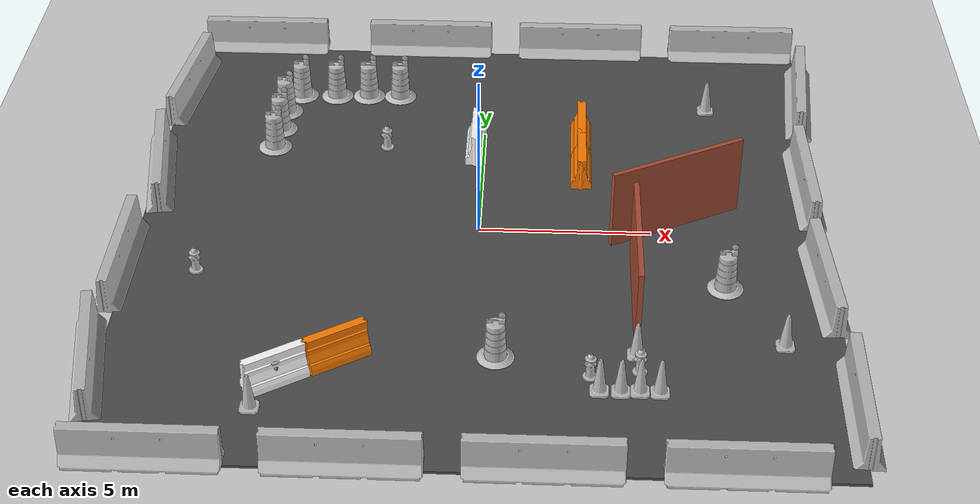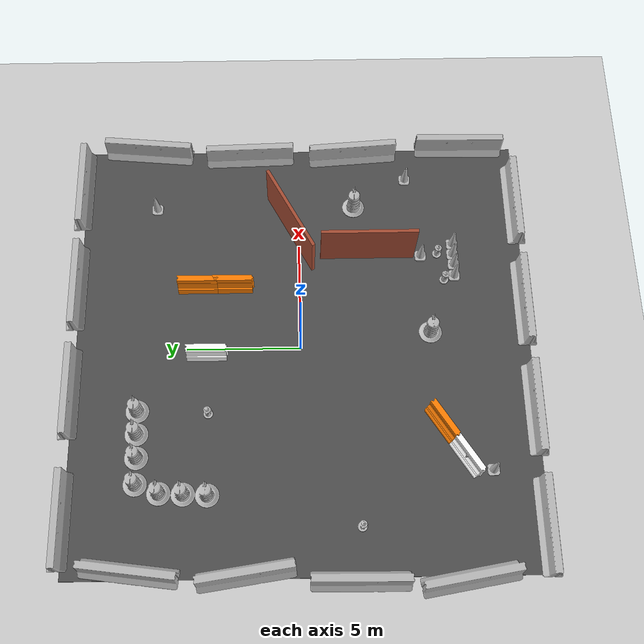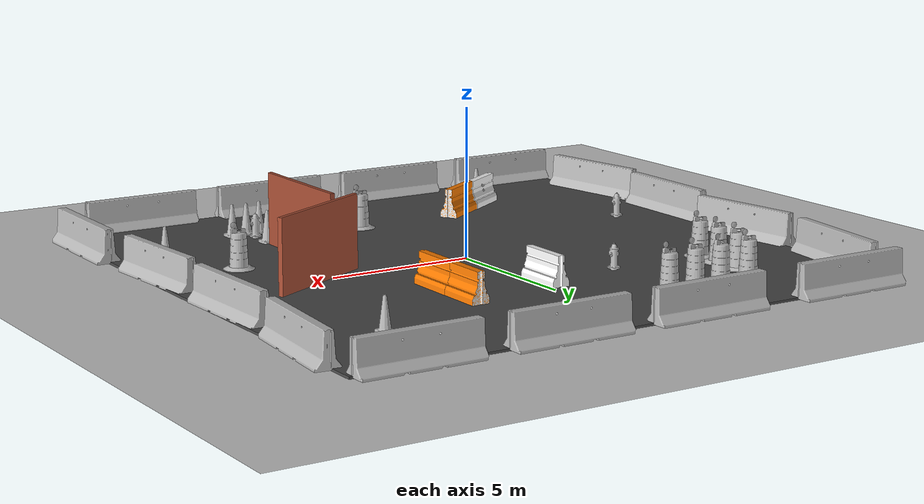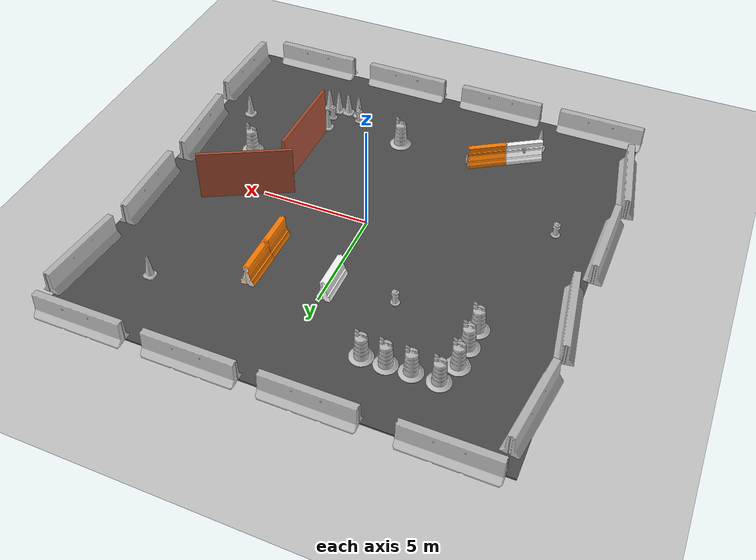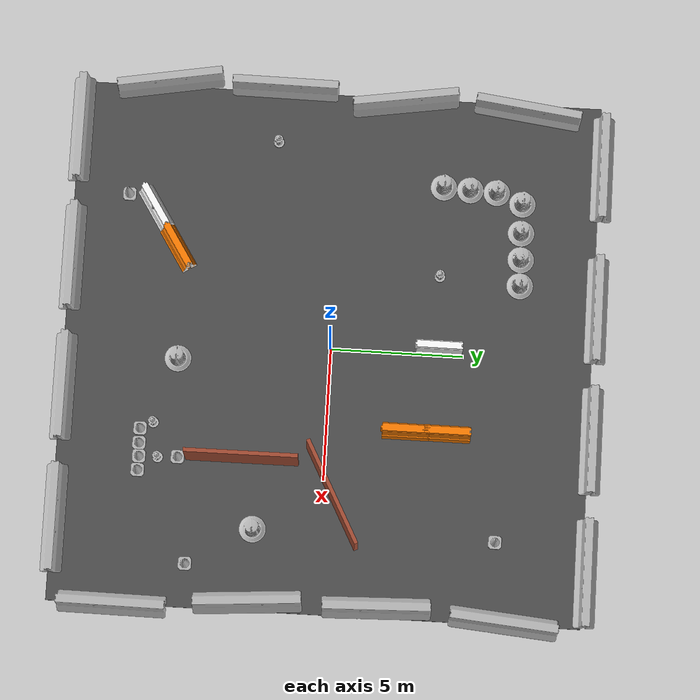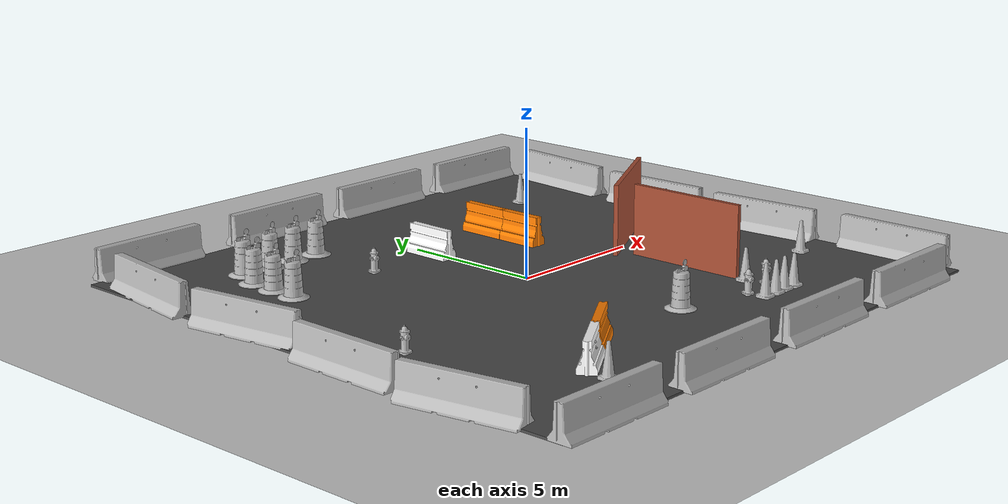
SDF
<sdf version="1.6">
 <world name="default">
  <light name="sun" type="directional">
   <pose>0 0 10 0 -0 0</pose>
   <diffuse>0.8 0.8 0.8 1</diffuse>
   <specular>0.2 0.2 0.2 1</specular>
   <attenuation>
    <range>1000</range>
    <constant>0.9</constant>
    <linear>0.01</linear>
    <quadratic>0.001</quadratic>
   </attenuation>
   <direction>-0.5 0.1 -0.9</direction>
  </light>
  <model name="ground_plane">
   <static>1</static>
   <link name="link">
    <collision name="collision">
     <geometry><plane><normal>0 0 1</normal><size>100 100</size></plane></geometry>
     <surface><friction><ode><mu>100</mu><mu2>50</mu2></ode></friction></surface>
    </collision>
    <visual name="visual">
     <cast_shadows>0</cast_shadows>
     <geometry><plane><normal>0 0 1</normal><size>100 100</size></plane></geometry>
     <material>
      <script><uri>file://media/materials/scripts/gazebo.material</uri><name>Gazebo/Grey</name></script>
     </material>
    </visual>
    <velocity_decay><linear>0</linear><angular>0</angular></velocity_decay>
   </link>
  </model>
  <physics name="default_physics" default="0" type="ode">
   <max_step_size>0.01</max_step_size>
   <real_time_factor>1</real_time_factor>
   <real_time_update_rate>100</real_time_update_rate>
  </physics>
  <scene><ambient>0.4 0.4 0.4 1</ambient><background>0.7 0.7 0.7 1</background><shadows>1</shadows></scene>
  <model name="jersey_barrier">
   <static>1</static>
   <link name="link">
    <visual name="visual">
     <geometry><mesh><uri>model://jersey_barrier/meshes/jersey_barrier.dae</uri></mesh></geometry>
    </visual>
    <collision name="upright">
     <pose>0 0 0.5715 0 -0 0</pose>
     <geometry><box><size>4.06542 0.3063 1.143</size></box></geometry>
    </collision>
    <collision name="base">
     <pose>0 0 0.032258 0 -0 0</pose>
     <geometry><box><size>4.06542 0.8107 0.064516</size></box></geometry>
    </collision>
    <collision name="base2">
     <pose>0 0 0.1 0 -0 0</pose>
     <geometry><box><size>4.06542 0.65 0.1</size></box></geometry>
    </collision>
    <collision name="base3">
     <pose>0 0 0.2 0 -0 0</pose>
     <geometry><box><size>4.06542 0.5 0.1</size></box></geometry>
    </collision>
    <collision name="left-angle">
     <pose>0 -0.224 0.2401 0.9 -0 0</pose>
     <geometry><box><size>4.06542 0.5 0.064516</size></box></geometry>
    </collision>
    <collision name="right-angle">
     <pose>0 0.224 0.2401 -0.9 0 0</pose>
     <geometry><box><size>4.06542 0.5 0.064516</size></box></geometry>
    </collision>
    <velocity_decay><linear>0</linear><angular>0</angular></velocity_decay>
   </link>
   <pose>-8 -10 0 0 -0 0</pose>
  </model>
  <model name="jersey_barrier_0">
   <static>1</static>
   <link name="link">
    <visual name="visual">
     <geometry><mesh><uri>model://jersey_barrier/meshes/jersey_barrier.dae</uri></mesh></geometry>
    </visual>
    <collision name="upright">
     <pose>0 0 0.5715 0 -0 0</pose>
     <geometry><box><size>4.06542 0.3063 1.143</size></box></geometry>
    </collision>
    <collision name="base">
     <pose>0 0 0.032258 0 -0 0</pose>
     <geometry><box><size>4.06542 0.8107 0.064516</size></box></geometry>
    </collision>
    <collision name="base2">
     <pose>0 0 0.1 0 -0 0</pose>
     <geometry><box><size>4.06542 0.65 0.1</size></box></geometry>
    </collision>
    <collision name="base3">
     <pose>0 0 0.2 0 -0 0</pose>
     <geometry><box><size>4.06542 0.5 0.1</size></box></geometry>
    </collision>
    <collision name="left-angle">
     <pose>0 -0.224 0.2401 0.9 -0 0</pose>
     <geometry><box><size>4.06542 0.5 0.064516</size></box></geometry>
    </collision>
    <collision name="right-angle">
     <pose>0 0.224 0.2401 -0.9 0 0</pose>
     <geometry><box><size>4.06542 0.5 0.064516</size></box></geometry>
    </collision>
    <velocity_decay><linear>0</linear><angular>0</angular></velocity_decay>
   </link>
   <pose>-3 -10 0 0 -0 0</pose>
  </model>
  <model name="jersey_barrier_1">
   <static>1</static>
   <link name="link">
    <visual name="visual">
     <geometry><mesh><uri>model://jersey_barrier/meshes/jersey_barrier.dae</uri></mesh></geometry>
    </visual>
    <collision name="upright">
     <pose>0 0 0.5715 0 -0 0</pose>
     <geometry><box><size>4.06542 0.3063 1.143</size></box></geometry>
    </collision>
    <collision name="base">
     <pose>0 0 0.032258 0 -0 0</pose>
     <geometry><box><size>4.06542 0.8107 0.064516</size></box></geometry>
    </collision>
    <collision name="base2">
     <pose>0 0 0.1 0 -0 0</pose>
     <geometry><box><size>4.06542 0.65 0.1</size></box></geometry>
    </collision>
    <collision name="base3">
     <pose>0 0 0.2 0 -0 0</pose>
     <geometry><box><size>4.06542 0.5 0.1</size></box></geometry>
    </collision>
    <collision name="left-angle">
     <pose>0 -0.224 0.2401 0.9 -0 0</pose>
     <geometry><box><size>4.06542 0.5 0.064516</size></box></geometry>
    </collision>
    <collision name="right-angle">
     <pose>0 0.224 0.2401 -0.9 0 0</pose>
     <geometry><box><size>4.06542 0.5 0.064516</size></box></geometry>
    </collision>
    <velocity_decay><linear>0</linear><angular>0</angular></velocity_decay>
   </link>
   <pose>2 -10 0 0 -0 0</pose>
  </model>
  <model name="jersey_barrier_2">
   <static>1</static>
   <link name="link">
    <visual name="visual">
     <geometry><mesh><uri>model://jersey_barrier/meshes/jersey_barrier.dae</uri></mesh></geometry>
    </visual>
    <collision name="upright">
     <pose>0 0 0.5715 0 -0 0</pose>
     <geometry><box><size>4.06542 0.3063 1.143</size></box></geometry>
    </collision>
    <collision name="base">
     <pose>0 0 0.032258 0 -0 0</pose>
     <geometry><box><size>4.06542 0.8107 0.064516</size></box></geometry>
    </collision>
    <collision name="base2">
     <pose>0 0 0.1 0 -0 0</pose>
     <geometry><box><size>4.06542 0.65 0.1</size></box></geometry>
    </collision>
    <collision name="base3">
     <pose>0 0 0.2 0 -0 0</pose>
     <geometry><box><size>4.06542 0.5 0.1</size></box></geometry>
    </collision>
    <collision name="left-angle">
     <pose>0 -0.224 0.2401 0.9 -0 0</pose>
     <geometry><box><size>4.06542 0.5 0.064516</size></box></geometry>
    </collision>
    <collision name="right-angle">
     <pose>0 0.224 0.2401 -0.9 0 0</pose>
     <geometry><box><size>4.06542 0.5 0.064516</size></box></geometry>
    </collision>
    <velocity_decay><linear>0</linear><angular>0</angular></velocity_decay>
   </link>
   <pose>7 -10 0 0 -0 0</pose>
  </model>
  <model name="jersey_barrier_3">
   <static>1</static>
   <link name="link">
    <visual name="visual">
     <geometry><mesh><uri>model://jersey_barrier/meshes/jersey_barrier.dae</uri></mesh></geometry>
    </visual>
    <collision name="upright">
     <pose>0 0 0.5715 0 -0 0</pose>
     <geometry><box><size>4.06542 0.3063 1.143</size></box></geometry>
    </collision>
    <collision name="base">
     <pose>0 0 0.032258 0 -0 0</pose>
     <geometry><box><size>4.06542 0.8107 0.064516</size></box></geometry>
    </collision>
    <collision name="base2">
     <pose>0 0 0.1 0 -0 0</pose>
     <geometry><box><size>4.06542 0.65 0.1</size></box></geometry>
    </collision>
    <collision name="base3">
     <pose>0 0 0.2 0 -0 0</pose>
     <geometry><box><size>4.06542 0.5 0.1</size></box></geometry>
    </collision>
    <collision name="left-angle">
     <pose>0 -0.224 0.2401 0.9 -0 0</pose>
     <geometry><box><size>4.06542 0.5 0.064516</size></box></geometry>
    </collision>
    <collision name="right-angle">
     <pose>0 0.224 0.2401 -0.9 0 0</pose>
     <geometry><box><size>4.06542 0.5 0.064516</size></box></geometry>
    </collision>
    <velocity_decay><linear>0</linear><angular>0</angular></velocity_decay>
   </link>
   <pose>-7.50675 10 0 0 -0 0</pose>
  </model>
  <model name="jersey_barrier_4">
   <static>1</static>
   <link name="link">
    <visual name="visual">
     <geometry><mesh><uri>model://jersey_barrier/meshes/jersey_barrier.dae</uri></mesh></geometry>
    </visual>
    <collision name="upright">
     <pose>0 0 0.5715 0 -0 0</pose>
     <geometry><box><size>4.06542 0.3063 1.143</size></box></geometry>
    </collision>
    <collision name="base">
     <pose>0 0 0.032258 0 -0 0</pose>
     <geometry><box><size>4.06542 0.8107 0.064516</size></box></geometry>
    </collision>
    <collision name="base2">
     <pose>0 0 0.1 0 -0 0</pose>
     <geometry><box><size>4.06542 0.65 0.1</size></box></geometry>
    </collision>
    <collision name="base3">
     <pose>0 0 0.2 0 -0 0</pose>
     <geometry><box><size>4.06542 0.5 0.1</size></box></geometry>
    </collision>
    <collision name="left-angle">
     <pose>0 -0.224 0.2401 0.9 -0 0</pose>
     <geometry><box><size>4.06542 0.5 0.064516</size></box></geometry>
    </collision>
    <collision name="right-angle">
     <pose>0 0.224 0.2401 -0.9 0 0</pose>
     <geometry><box><size>4.06542 0.5 0.064516</size></box></geometry>
    </collision>
    <velocity_decay><linear>0</linear><angular>0</angular></velocity_decay>
   </link>
   <pose>-2 10 0 0 -0 0</pose>
  </model>
  <model name="jersey_barrier_5">
   <static>1</static>
   <link name="link">
    <visual name="visual">
     <geometry><mesh><uri>model://jersey_barrier/meshes/jersey_barrier.dae</uri></mesh></geometry>
    </visual>
    <collision name="upright">
     <pose>0 0 0.5715 0 -0 0</pose>
     <geometry><box><size>4.06542 0.3063 1.143</size></box></geometry>
    </collision>
    <collision name="base">
     <pose>0 0 0.032258 0 -0 0</pose>
     <geometry><box><size>4.06542 0.8107 0.064516</size></box></geometry>
    </collision>
    <collision name="base2">
     <pose>0 0 0.1 0 -0 0</pose>
     <geometry><box><size>4.06542 0.65 0.1</size></box></geometry>
    </collision>
    <collision name="base3">
     <pose>0 0 0.2 0 -0 0</pose>
     <geometry><box><size>4.06542 0.5 0.1</size></box></geometry>
    </collision>
    <collision name="left-angle">
     <pose>0 -0.224 0.2401 0.9 -0 0</pose>
     <geometry><box><size>4.06542 0.5 0.064516</size></box></geometry>
    </collision>
    <collision name="right-angle">
     <pose>0 0.224 0.2401 -0.9 0 0</pose>
     <geometry><box><size>4.06542 0.5 0.064516</size></box></geometry>
    </collision>
    <velocity_decay><linear>0</linear><angular>0</angular></velocity_decay>
   </link>
   <pose>3 10 0 0 -0 0</pose>
  </model>
  <model name="jersey_barrier_6">
   <static>1</static>
   <link name="link">
    <visual name="visual">
     <geometry><mesh><uri>model://jersey_barrier/meshes/jersey_barrier.dae</uri></mesh></geometry>
    </visual>
    <collision name="upright">
     <pose>0 0 0.5715 0 -0 0</pose>
     <geometry><box><size>4.06542 0.3063 1.143</size></box></geometry>
    </collision>
    <collision name="base">
     <pose>0 0 0.032258 0 -0 0</pose>
     <geometry><box><size>4.06542 0.8107 0.064516</size></box></geometry>
    </collision>
    <collision name="base2">
     <pose>0 0 0.1 0 -0 0</pose>
     <geometry><box><size>4.06542 0.65 0.1</size></box></geometry>
    </collision>
    <collision name="base3">
     <pose>0 0 0.2 0 -0 0</pose>
     <geometry><box><size>4.06542 0.5 0.1</size></box></geometry>
    </collision>
    <collision name="left-angle">
     <pose>0 -0.224 0.2401 0.9 -0 0</pose>
     <geometry><box><size>4.06542 0.5 0.064516</size></box></geometry>
    </collision>
    <collision name="right-angle">
     <pose>0 0.224 0.2401 -0.9 0 0</pose>
     <geometry><box><size>4.06542 0.5 0.064516</size></box></geometry>
    </collision>
    <velocity_decay><linear>0</linear><angular>0</angular></velocity_decay>
   </link>
   <pose>8 10 0 0 -0 0</pose>
  </model>
  <model name="jersey_barrier_7">
   <static>1</static>
   <link name="link">
    <visual name="visual">
     <geometry><mesh><uri>model://jersey_barrier/meshes/jersey_barrier.dae</uri></mesh></geometry>
    </visual>
    <collision name="upright">
     <pose>0 0 0.5715 0 -0 0</pose>
     <geometry><box><size>4.06542 0.3063 1.143</size></box></geometry>
    </collision>
    <collision name="base">
     <pose>0 0 0.032258 0 -0 0</pose>
     <geometry><box><size>4.06542 0.8107 0.064516</size></box></geometry>
    </collision>
    <collision name="base2">
     <pose>0 0 0.1 0 -0 0</pose>
     <geometry><box><size>4.06542 0.65 0.1</size></box></geometry>
    </collision>
    <collision name="base3">
     <pose>0 0 0.2 0 -0 0</pose>
     <geometry><box><size>4.06542 0.5 0.1</size></box></geometry>
    </collision>
    <collision name="left-angle">
     <pose>0 -0.224 0.2401 0.9 -0 0</pose>
     <geometry><box><size>4.06542 0.5 0.064516</size></box></geometry>
    </collision>
    <collision name="right-angle">
     <pose>0 0.224 0.2401 -0.9 0 0</pose>
     <geometry><box><size>4.06542 0.5 0.064516</size></box></geometry>
    </collision>
    <velocity_decay><linear>0</linear><angular>0</angular></velocity_decay>
   </link>
   <pose>9.74902 -2.57759 0 0 -0 1.64</pose>
  </model>
  <model name="jersey_barrier_8">
   <static>1</static>
   <link name="link">
    <visual name="visual">
     <geometry><mesh><uri>model://jersey_barrier/meshes/jersey_barrier.dae</uri></mesh></geometry>
    </visual>
    <collision name="upright">
     <pose>0 0 0.5715 0 -0 0</pose>
     <geometry><box><size>4.06542 0.3063 1.143</size></box></geometry>
    </collision>
    <collision name="base">
     <pose>0 0 0.032258 0 -0 0</pose>
     <geometry><box><size>4.06542 0.8107 0.064516</size></box></geometry>
    </collision>
    <collision name="base2">
     <pose>0 0 0.1 0 -0 0</pose>
     <geometry><box><size>4.06542 0.65 0.1</size></box></geometry>
    </collision>
    <collision name="base3">
     <pose>0 0 0.2 0 -0 0</pose>
     <geometry><box><size>4.06542 0.5 0.1</size></box></geometry>
    </collision>
    <collision name="left-angle">
     <pose>0 -0.224 0.2401 0.9 -0 0</pose>
     <geometry><box><size>4.06542 0.5 0.064516</size></box></geometry>
    </collision>
    <collision name="right-angle">
     <pose>0 0.224 0.2401 -0.9 0 0</pose>
     <geometry><box><size>4.06542 0.5 0.064516</size></box></geometry>
    </collision>
    <velocity_decay><linear>0</linear><angular>0</angular></velocity_decay>
   </link>
   <pose>9.70141 2.24369 0 0 -0 1.6</pose>
  </model>
  <model name="jersey_barrier_9">
   <static>1</static>
   <link name="link">
    <visual name="visual">
     <geometry><mesh><uri>model://jersey_barrier/meshes/jersey_barrier.dae</uri></mesh></geometry>
    </visual>
    <collision name="upright">
     <pose>0 0 0.5715 0 -0 0</pose>
     <geometry><box><size>4.06542 0.3063 1.143</size></box></geometry>
    </collision>
    <collision name="base">
     <pose>0 0 0.032258 0 -0 0</pose>
     <geometry><box><size>4.06542 0.8107 0.064516</size></box></geometry>
    </collision>
    <collision name="base2">
     <pose>0 0 0.1 0 -0 0</pose>
     <geometry><box><size>4.06542 0.65 0.1</size></box></geometry>
    </collision>
    <collision name="base3">
     <pose>0 0 0.2 0 -0 0</pose>
     <geometry><box><size>4.06542 0.5 0.1</size></box></geometry>
    </collision>
    <collision name="left-angle">
     <pose>0 -0.224 0.2401 0.9 -0 0</pose>
     <geometry><box><size>4.06542 0.5 0.064516</size></box></geometry>
    </collision>
    <collision name="right-angle">
     <pose>0 0.224 0.2401 -0.9 0 0</pose>
     <geometry><box><size>4.06542 0.5 0.064516</size></box></geometry>
    </collision>
    <velocity_decay><linear>0</linear><angular>0</angular></velocity_decay>
   </link>
   <pose>-10.0607 -6.69856 0 0 0 -1.4</pose>
  </model>
  <model name="jersey_barrier_10">
   <static>1</static>
   <link name="link">
    <visual name="visual">
     <geometry><mesh><uri>model://jersey_barrier/meshes/jersey_barrier.dae</uri></mesh></geometry>
    </visual>
    <collision name="upright">
     <pose>0 0 0.5715 0 -0 0</pose>
     <geometry><box><size>4.06542 0.3063 1.143</size></box></geometry>
    </collision>
    <collision name="base">
     <pose>0 0 0.032258 0 -0 0</pose>
     <geometry><box><size>4.06542 0.8107 0.064516</size></box></geometry>
    </collision>
    <collision name="base2">
     <pose>0 0 0.1 0 -0 0</pose>
     <geometry><box><size>4.06542 0.65 0.1</size></box></geometry>
    </collision>
    <collision name="base3">
     <pose>0 0 0.2 0 -0 0</pose>
     <geometry><box><size>4.06542 0.5 0.1</size></box></geometry>
    </collision>
    <collision name="left-angle">
     <pose>0 -0.224 0.2401 0.9 -0 0</pose>
     <geometry><box><size>4.06542 0.5 0.064516</size></box></geometry>
    </collision>
    <collision name="right-angle">
     <pose>0 0.224 0.2401 -0.9 0 0</pose>
     <geometry><box><size>4.06542 0.5 0.064516</size></box></geometry>
    </collision>
    <velocity_decay><linear>0</linear><angular>0</angular></velocity_decay>
   </link>
   <pose>-10.0774 -2.27159 0 0 -0 1.56</pose>
  </model>
  <model name="jersey_barrier_11">
   <static>1</static>
   <link name="link">
    <visual name="visual">
     <geometry><mesh><uri>model://jersey_barrier/meshes/jersey_barrier.dae</uri></mesh></geometry>
    </visual>
    <collision name="upright">
     <pose>0 0 0.5715 0 -0 0</pose>
     <geometry><box><size>4.06542 0.3063 1.143</size></box></geometry>
    </collision>
    <collision name="base">
     <pose>0 0 0.032258 0 -0 0</pose>
     <geometry><box><size>4.06542 0.8107 0.064516</size></box></geometry>
    </collision>
    <collision name="base2">
     <pose>0 0 0.1 0 -0 0</pose>
     <geometry><box><size>4.06542 0.65 0.1</size></box></geometry>
    </collision>
    <collision name="base3">
     <pose>0 0 0.2 0 -0 0</pose>
     <geometry><box><size>4.06542 0.5 0.1</size></box></geometry>
    </collision>
    <collision name="left-angle">
     <pose>0 -0.224 0.2401 0.9 -0 0</pose>
     <geometry><box><size>4.06542 0.5 0.064516</size></box></geometry>
    </collision>
    <collision name="right-angle">
     <pose>0 0.224 0.2401 -0.9 0 0</pose>
     <geometry><box><size>4.06542 0.5 0.064516</size></box></geometry>
    </collision>
    <velocity_decay><linear>0</linear><angular>0</angular></velocity_decay>
   </link>
   <pose>-9.77013 2.34791 0 0 -0 1.72</pose>
  </model>
  <model name="jersey_barrier_12">
   <static>1</static>
   <link name="link">
    <visual name="visual">
     <geometry><mesh><uri>model://jersey_barrier/meshes/jersey_barrier.dae</uri></mesh></geometry>
    </visual>
    <collision name="upright">
     <pose>0 0 0.5715 0 -0 0</pose>
     <geometry><box><size>4.06542 0.3063 1.143</size></box></geometry>
    </collision>
    <collision name="base">
     <pose>0 0 0.032258 0 -0 0</pose>
     <geometry><box><size>4.06542 0.8107 0.064516</size></box></geometry>
    </collision>
    <collision name="base2">
     <pose>0 0 0.1 0 -0 0</pose>
     <geometry><box><size>4.06542 0.65 0.1</size></box></geometry>
    </collision>
    <collision name="base3">
     <pose>0 0 0.2 0 -0 0</pose>
     <geometry><box><size>4.06542 0.5 0.1</size></box></geometry>
    </collision>
    <collision name="left-angle">
     <pose>0 -0.224 0.2401 0.9 -0 0</pose>
     <geometry><box><size>4.06542 0.5 0.064516</size></box></geometry>
    </collision>
    <collision name="right-angle">
     <pose>0 0.224 0.2401 -0.9 0 0</pose>
     <geometry><box><size>4.06542 0.5 0.064516</size></box></geometry>
    </collision>
    <velocity_decay><linear>0</linear><angular>0</angular></velocity_decay>
   </link>
   <pose>10.0879 -7.62159 0 0 -0 1.56</pose>
  </model>
  <model name="jersey_barrier_13">
   <static>1</static>
   <link name="link">
    <visual name="visual">
     <geometry><mesh><uri>model://jersey_barrier/meshes/jersey_barrier.dae</uri></mesh></geometry>
    </visual>
    <collision name="upright">
     <pose>0 0 0.5715 0 -0 0</pose>
     <geometry><box><size>4.06542 0.3063 1.143</size></box></geometry>
    </collision>
    <collision name="base">
     <pose>0 0 0.032258 0 -0 0</pose>
     <geometry><box><size>4.06542 0.8107 0.064516</size></box></geometry>
    </collision>
    <collision name="base2">
     <pose>0 0 0.1 0 -0 0</pose>
     <geometry><box><size>4.06542 0.65 0.1</size></box></geometry>
    </collision>
    <collision name="base3">
     <pose>0 0 0.2 0 -0 0</pose>
     <geometry><box><size>4.06542 0.5 0.1</size></box></geometry>
    </collision>
    <collision name="left-angle">
     <pose>0 -0.224 0.2401 0.9 -0 0</pose>
     <geometry><box><size>4.06542 0.5 0.064516</size></box></geometry>
    </collision>
    <collision name="right-angle">
     <pose>0 0.224 0.2401 -0.9 0 0</pose>
     <geometry><box><size>4.06542 0.5 0.064516</size></box></geometry>
    </collision>
    <velocity_decay><linear>0</linear><angular>0</angular></velocity_decay>
   </link>
   <pose>10 7 0 0 -0 1.48</pose>
  </model>
  <model name="jersey_barrier_14">
   <static>1</static>
   <link name="link">
    <visual name="visual">
     <geometry><mesh><uri>model://jersey_barrier/meshes/jersey_barrier.dae</uri></mesh></geometry>
    </visual>
    <collision name="upright">
     <pose>0 0 0.5715 0 -0 0</pose>
     <geometry><box><size>4.06542 0.3063 1.143</size></box></geometry>
    </collision>
    <collision name="base">
     <pose>0 0 0.032258 0 -0 0</pose>
     <geometry><box><size>4.06542 0.8107 0.064516</size></box></geometry>
    </collision>
    <collision name="base2">
     <pose>0 0 0.1 0 -0 0</pose>
     <geometry><box><size>4.06542 0.65 0.1</size></box></geometry>
    </collision>
    <collision name="base3">
     <pose>0 0 0.2 0 -0 0</pose>
     <geometry><box><size>4.06542 0.5 0.1</size></box></geometry>
    </collision>
    <collision name="left-angle">
     <pose>0 -0.224 0.2401 0.9 -0 0</pose>
     <geometry><box><size>4.06542 0.5 0.064516</size></box></geometry>
    </collision>
    <collision name="right-angle">
     <pose>0 0.224 0.2401 -0.9 0 0</pose>
     <geometry><box><size>4.06542 0.5 0.064516</size></box></geometry>
    </collision>
    <velocity_decay><linear>0</linear><angular>0</angular></velocity_decay>
   </link>
   <pose>-9.64482 7.05946 0 0 -0 1.44</pose>
  </model>
  <model name="fire_hydrant">
   <static>1</static>
   <link name="link">
    <collision name="collision">
     <geometry><mesh><uri>model://fire_hydrant/meshes/fire_hydrant.dae</uri></mesh></geometry>
    </collision>
    <visual name="visual">
     <geometry><mesh><uri>model://fire_hydrant/meshes/fire_hydrant.dae</uri></mesh></geometry>
    </visual>
    <velocity_decay><linear>0</linear><angular>0</angular></velocity_decay>
   </link>
   <pose>3.18024 -6.51118 0 0 -0 0</pose>
  </model>
  <model name="fire_hydrant_0">
   <static>1</static>
   <link name="link">
    <collision name="collision">
     <geometry><mesh><uri>model://fire_hydrant/meshes/fire_hydrant.dae</uri></mesh></geometry>
    </collision>
    <visual name="visual">
     <geometry><mesh><uri>model://fire_hydrant/meshes/fire_hydrant.dae</uri></mesh></geometry>
    </visual>
    <velocity_decay><linear>0</linear><angular>0</angular></velocity_decay>
   </link>
   <pose>-3 4 0 0 -0 0</pose>
  </model>
  <model name="fire_hydrant_1">
   <static>1</static>
   <link name="link">
    <collision name="collision">
     <geometry><mesh><uri>model://fire_hydrant/meshes/fire_hydrant.dae</uri></mesh></geometry>
    </collision>
    <visual name="visual">
     <geometry><mesh><uri>model://fire_hydrant/meshes/fire_hydrant.dae</uri></mesh></geometry>
    </visual>
    <velocity_decay><linear>0</linear><angular>0</angular></velocity_decay>
   </link>
   <pose>-7.90686 -2.41363 0 0 -0 0</pose>
  </model>
  <model name="Construction Cone">
   <link name="link">
    <collision name="collision">
     <geometry>
      <mesh><scale>10 10 10</scale><uri>model://construction_cone/meshes/construction_cone.dae</uri></mesh>
     </geometry>
    </collision>
    <visual name="visual">
     <geometry>
      <mesh><scale>10 10 10</scale><uri>model://construction_cone/meshes/construction_cone.dae</uri></mesh>
     </geometry>
    </visual>
    <velocity_decay><linear>0</linear><angular>0</angular></velocity_decay>
    <inertial>
     <inertia><ixx>1</ixx><ixy>0</ixy><ixz>0</ixz><iyy>1</iyy><iyz>0</iyz><izz>1</izz></inertia>
     <mass>1</mass>
    </inertial>
   </link>
   <pose>-5.59121 -8 0.05 0 -1e-06 6e-06</pose>
   <static>0</static>
  </model>
  <model name="Construction Barrel">
   <link name="link">
    <inertial>
     <pose>0 0 0.4 0 -0 0</pose>
     <mass>500</mass>
     <inertia><ixx>51.2096</ixx><iyy>51.2096</iyy><izz>25</izz><ixy>0</ixy><ixz>0</ixz><iyz>0</iyz></inertia>
    </inertial>
    <collision name="collision">
     <geometry><mesh><uri>model://construction_barrel/meshes/construction_barrel.dae</uri></mesh></geometry>
    </collision>
    <visual name="visual">
     <geometry><mesh><uri>model://construction_barrel/meshes/construction_barrel.dae</uri></mesh></geometry>
    </visual>
    <velocity_decay><linear>0</linear><angular>0</angular></velocity_decay>
   </link>
   <pose>7.00012 -2.54615 0.049879 0.000482 -5e-06 0.00012</pose>
   <static>0</static>
  </model>
  <model name="Construction Cone_0">
   <link name="link">
    <collision name="collision">
     <geometry>
      <mesh><scale>10 10 10</scale><uri>model://construction_cone/meshes/construction_cone.dae</uri></mesh>
     </geometry>
    </collision>
    <visual name="visual">
     <geometry>
      <mesh><scale>10 10 10</scale><uri>model://construction_cone/meshes/construction_cone.dae</uri></mesh>
     </geometry>
    </visual>
    <velocity_decay><linear>0</linear><angular>0</angular></velocity_decay>
    <inertial>
     <inertia><ixx>1</ixx><ixy>0</ixy><ixz>0</ixz><iyy>1</iyy><iyz>0</iyz><izz>1</izz></inertia>
     <mass>1</mass>
    </inertial>
   </link>
   <pose>6.99685 6.55732 0.05 -0 -1e-06 -0.007006</pose>
   <static>0</static>
  </model>
  <model name="Construction Barrel_0">
   <link name="link">
    <inertial>
     <pose>0 0 0.4 0 -0 0</pose>
     <mass>500</mass>
     <inertia><ixx>51.2096</ixx><iyy>51.2096</iyy><izz>25</izz><ixy>0</ixy><ixz>0</ixz><iyz>0</iyz></inertia>
    </inertial>
    <collision name="collision">
     <geometry><mesh><uri>model://construction_barrel/meshes/construction_barrel.dae</uri></mesh></geometry>
    </collision>
    <visual name="visual">
     <geometry><mesh><uri>model://construction_barrel/meshes/construction_barrel.dae</uri></mesh></geometry>
    </visual>
    <velocity_decay><linear>0</linear><angular>0</angular></velocity_decay>
   </link>
   <pose>0.673632 -5.75031 0.049904 -0.000188 -0.000369 -0.000243</pose>
   <static>0</static>
  </model>
  <model name="asphalt_plane">
   <static>1</static>
   <link name="link">
    <collision name="collision"><geometry><box><size>20 20 0.1</size></box></geometry></collision>
    <visual name="visual">
     <cast_shadows>0</cast_shadows>
     <geometry><box><size>20 20 0.1</size></box></geometry>
     <material>
      <script>
       <uri>model://asphalt_plane/materials/scripts</uri>
       <uri>model://asphalt_plane/materials/textures</uri>
       <name>vrc/asphalt</name>
      </script>
     </material>
    </visual>
    <velocity_decay><linear>0</linear><angular>0</angular></velocity_decay>
   </link>
   <pose>0.076733 -0.110379 0 0 -0 0</pose>
  </model>
  <model name="Construction Barrel_1">
   <link name="link">
    <inertial>
     <pose>0 0 0.4 0 -0 0</pose>
     <mass>500</mass>
     <inertia><ixx>51.2096</ixx><iyy>51.2096</iyy><izz>25</izz><ixy>0</ixy><ixz>0</ixz><iyz>0</iyz></inertia>
    </inertial>
    <collision name="collision">
     <geometry><mesh><uri>model://construction_barrel/meshes/construction_barrel.dae</uri></mesh></geometry>
    </collision>
    <visual name="visual">
     <geometry><mesh><uri>model://construction_barrel/meshes/construction_barrel.dae</uri></mesh></geometry>
    </visual>
    <velocity_decay><linear>0</linear><angular>0</angular></velocity_decay>
   </link>
   <pose>-6.50437 3.98313 0.049903 0.000401 9e-05 -0.009459</pose>
   <static>0</static>
  </model>
  <model name="Construction Barrel_2">
   <link name="link">
    <inertial>
     <pose>0 0 0.4 0 -0 0</pose>
     <mass>500</mass>
     <inertia><ixx>51.2096</ixx><iyy>51.2096</iyy><izz>25</izz><ixy>0</ixy><ixz>0</ixz><iyz>0</iyz></inertia>
    </inertial>
    <collision name="collision">
     <geometry><mesh><uri>model://construction_barrel/meshes/construction_barrel.dae</uri></mesh></geometry>
    </collision>
    <visual name="visual">
     <geometry><mesh><uri>model://construction_barrel/meshes/construction_barrel.dae</uri></mesh></geometry>
    </visual>
    <velocity_decay><linear>0</linear><angular>0</angular></velocity_decay>
   </link>
   <pose>-6.45055 4.9966 0.049874 -0.000248 -0.000428 0.064762</pose>
   <static>0</static>
  </model>
  <model name="Construction Barrel_3">
   <link name="link">
    <inertial>
     <pose>0 0 0.4 0 -0 0</pose>
     <mass>500</mass>
     <inertia><ixx>51.2096</ixx><iyy>51.2096</iyy><izz>25</izz><ixy>0</ixy><ixz>0</ixz><iyz>0</iyz></inertia>
    </inertial>
    <collision name="collision">
     <geometry><mesh><uri>model://construction_barrel/meshes/construction_barrel.dae</uri></mesh></geometry>
    </collision>
    <visual name="visual">
     <geometry><mesh><uri>model://construction_barrel/meshes/construction_barrel.dae</uri></mesh></geometry>
    </visual>
    <velocity_decay><linear>0</linear><angular>0</angular></velocity_decay>
   </link>
   <pose>-6.40163 6.01137 0.049865 -0.000142 -0.000496 -0.12079</pose>
   <static>0</static>
  </model>
  <model name="Construction Barrel_4">
   <link name="link">
    <inertial>
     <pose>0 0 0.4 0 -0 0</pose>
     <mass>500</mass>
     <inertia><ixx>51.2096</ixx><iyy>51.2096</iyy><izz>25</izz><ixy>0</ixy><ixz>0</ixz><iyz>0</iyz></inertia>
    </inertial>
    <collision name="collision">
     <geometry><mesh><uri>model://construction_barrel/meshes/construction_barrel.dae</uri></mesh></geometry>
    </collision>
    <visual name="visual">
     <geometry><mesh><uri>model://construction_barrel/meshes/construction_barrel.dae</uri></mesh></geometry>
    </visual>
    <velocity_decay><linear>0</linear><angular>0</angular></velocity_decay>
   </link>
   <pose>-6.00596 7.00929 0.049878 0.000439 0.000125 -0.04945</pose>
   <static>0</static>
  </model>
  <model name="Construction Barrel_5">
   <link name="link">
    <inertial>
     <pose>0 0 0.4 0 -0 0</pose>
     <mass>500</mass>
     <inertia><ixx>51.2096</ixx><iyy>51.2096</iyy><izz>25</izz><ixy>0</ixy><ixz>0</ixz><iyz>0</iyz></inertia>
    </inertial>
    <collision name="collision">
     <geometry><mesh><uri>model://construction_barrel/meshes/construction_barrel.dae</uri></mesh></geometry>
    </collision>
    <visual name="visual">
     <geometry><mesh><uri>model://construction_barrel/meshes/construction_barrel.dae</uri></mesh></geometry>
    </visual>
    <velocity_decay><linear>0</linear><angular>0</angular></velocity_decay>
   </link>
   <pose>-4.8755 7.00835 0.049921 -0.000156 -0.000328 0.146012</pose>
   <static>0</static>
  </model>
  <model name="Construction Barrel_6">
   <link name="link">
    <inertial>
     <pose>0 0 0.4 0 -0 0</pose>
     <mass>500</mass>
     <inertia><ixx>51.2096</ixx><iyy>51.2096</iyy><izz>25</izz><ixy>0</ixy><ixz>0</ixz><iyz>0</iyz></inertia>
    </inertial>
    <collision name="collision">
     <geometry><mesh><uri>model://construction_barrel/meshes/construction_barrel.dae</uri></mesh></geometry>
    </collision>
    <visual name="visual">
     <geometry><mesh><uri>model://construction_barrel/meshes/construction_barrel.dae</uri></mesh></geometry>
    </visual>
    <velocity_decay><linear>0</linear><angular>0</angular></velocity_decay>
   </link>
   <pose>-3.84358 7.04225 0.049913 -5.5e-05 -0.000348 0.03102</pose>
   <static>0</static>
  </model>
  <model name="Construction Barrel_7">
   <link name="link">
    <inertial>
     <pose>0 0 0.4 0 -0 0</pose>
     <mass>500</mass>
     <inertia><ixx>51.2096</ixx><iyy>51.2096</iyy><izz>25</izz><ixy>0</ixy><ixz>0</ixz><iyz>0</iyz></inertia>
    </inertial>
    <collision name="collision">
     <geometry><mesh><uri>model://construction_barrel/meshes/construction_barrel.dae</uri></mesh></geometry>
    </collision>
    <visual name="visual">
     <geometry><mesh><uri>model://construction_barrel/meshes/construction_barrel.dae</uri></mesh></geometry>
    </visual>
    <velocity_decay><linear>0</linear><angular>0</angular></velocity_decay>
   </link>
   <pose>-2.82766 7.05054 0.04993 0.000331 -2.1e-05 0.062313</pose>
   <static>0</static>
  </model>
  <model name="Construction Cone_1">
   <link name="link">
    <collision name="collision">
     <geometry>
      <mesh><scale>10 10 10</scale><uri>model://construction_cone/meshes/construction_cone.dae</uri></mesh>
     </geometry>
    </collision>
    <visual name="visual">
     <geometry>
      <mesh><scale>10 10 10</scale><uri>model://construction_cone/meshes/construction_cone.dae</uri></mesh>
     </geometry>
    </visual>
    <velocity_decay><linear>0</linear><angular>0</angular></velocity_decay>
    <inertial>
     <inertia><ixx>1</ixx><ixy>0</ixy><ixz>0</ixz><iyy>1</iyy><iyz>0</iyz><izz>1</izz></inertia>
     <mass>1</mass>
    </inertial>
   </link>
   <pose>8.42887 -5 0.05 0 -1e-06 6e-06</pose>
   <static>0</static>
  </model>
  <spherical_coordinates>
   <surface_model>EARTH_WGS84</surface_model>
   <latitude_deg>0</latitude_deg>
   <longitude_deg>0</longitude_deg>
   <elevation>0</elevation>
   <heading_deg>0</heading_deg>
  </spherical_coordinates>
  <model name="worlds">
   <pose>4.45045 -3.07992 0 0 -0 0</pose>
   <link name="Wall_0">
    <collision name="Wall_0_Collision">
     <geometry><box><size>4.25 0.15 2.5</size></box></geometry>
     <pose>0 0 1.25 0 -0 0</pose>
    </collision>
    <visual name="Wall_0_Visual">
     <pose>0 0 1.25 0 -0 0</pose>
     <geometry><box><size>4.25 0.15 2.5</size></box></geometry>
     <material>
      <script><uri>file://media/materials/scripts/gazebo.material</uri><name>Gazebo/Bricks</name></script>
      <ambient>1 1 1 1</ambient>
     </material>
    </visual>
    <pose>0 -0 0 0 -0 1.5708</pose>
   </link>
   <static>1</static>
  </model>
  <model name="worlds_0">
   <pose>5.69388 0.374648 0 0 0 -1.0847</pose>
   <link name="Wall_0">
    <collision name="Wall_0_Collision">
     <geometry><box><size>4.25 0.15 2.5</size></box></geometry>
     <pose>0 0 1.25 0 -0 0</pose>
    </collision>
    <visual name="Wall_0_Visual">
     <pose>0 0 1.25 0 -0 0</pose>
     <geometry><box><size>4.25 0.15 2.5</size></box></geometry>
     <material>
      <script><uri>file://media/materials/scripts/gazebo.material</uri><name>Gazebo/Bricks</name></script>
      <ambient>1 1 1 1</ambient>
     </material>
    </visual>
    <pose>0 -0 0 0 -0 1.5708</pose>
   </link>
   <static>1</static>
  </model>
  <model name="drc_practice_white_jersey_barrier">
   <static>1</static>
   <link name="link">
    <visual name="visual">
     <geometry>
      <mesh><uri>model://drc_practice_white_jersey_barrier/meshes/jersey_barrier.dae</uri></mesh>
     </geometry>
    </visual>
    <collision name="collision">
     <geometry>
      <mesh><uri>model://drc_practice_white_jersey_barrier/meshes/jersey_barrier.dae</uri></mesh>
     </geometry>
    </collision>
   </link>
   <pose>-0.246773 4.11228 0 0 -0 0</pose>
  </model>
  <model name="drc_practice_organge_jersey_barrier">
   <static>1</static>
   <link name="link">
    <visual name="visual">
     <geometry>
      <mesh><uri>model://drc_practice_orange_jersey_barrier/meshes/jersey_barrier.dae</uri></mesh>
     </geometry>
    </visual>
    <collision name="collision">
     <geometry>
      <mesh><uri>model://drc_practice_orange_jersey_barrier/meshes/jersey_barrier.dae</uri></mesh>
     </geometry>
    </collision>
   </link>
   <pose>3 3 0 0 -0 0</pose>
  </model>
  <model name="drc_practice_organge_jersey_barrier_0">
   <static>1</static>
   <link name="link">
    <visual name="visual">
     <geometry>
      <mesh><uri>model://drc_practice_orange_jersey_barrier/meshes/jersey_barrier.dae</uri></mesh>
     </geometry>
    </visual>
    <collision name="collision">
     <geometry>
      <mesh><uri>model://drc_practice_orange_jersey_barrier/meshes/jersey_barrier.dae</uri></mesh>
     </geometry>
    </collision>
   </link>
   <pose>3 4.55782 0 0 -0 0</pose>
  </model>
  <model name="Construction Cone_2">
   <link name="link">
    <collision name="collision">
     <geometry>
      <mesh><scale>10 10 10</scale><uri>model://construction_cone/meshes/construction_cone.dae</uri></mesh>
     </geometry>
    </collision>
    <visual name="visual">
     <geometry>
      <mesh><scale>10 10 10</scale><uri>model://construction_cone/meshes/construction_cone.dae</uri></mesh>
     </geometry>
    </visual>
    <inertial>
     <inertia><ixx>1</ixx><ixy>0</ixy><ixz>0</ixz><iyy>1</iyy><iyz>0</iyz><izz>1</izz></inertia>
     <mass>1</mass>
    </inertial>
   </link>
   <pose>5 -7 0.05 0 -1e-06 5e-06</pose>
  </model>
  <model name="Construction Cone_3">
   <link name="link">
    <collision name="collision">
     <geometry>
      <mesh><scale>10 10 10</scale><uri>model://construction_cone/meshes/construction_cone.dae</uri></mesh>
     </geometry>
    </collision>
    <visual name="visual">
     <geometry>
      <mesh><scale>10 10 10</scale><uri>model://construction_cone/meshes/construction_cone.dae</uri></mesh>
     </geometry>
    </visual>
    <inertial>
     <inertia><ixx>1</ixx><ixy>0</ixy><ixz>0</ixz><iyy>1</iyy><iyz>0</iyz><izz>1</izz></inertia>
     <mass>1</mass>
    </inertial>
   </link>
   <pose>4.47849 -6.98103 0.05 -0 -1e-06 -0.006013</pose>
  </model>
  <model name="Construction Cone_4">
   <link name="link">
    <collision name="collision">
     <geometry>
      <mesh><scale>10 10 10</scale><uri>model://construction_cone/meshes/construction_cone.dae</uri></mesh>
     </geometry>
    </collision>
    <visual name="visual">
     <geometry>
      <mesh><scale>10 10 10</scale><uri>model://construction_cone/meshes/construction_cone.dae</uri></mesh>
     </geometry>
    </visual>
    <inertial>
     <inertia><ixx>1</ixx><ixy>0</ixy><ixz>0</ixz><iyy>1</iyy><iyz>0</iyz><izz>1</izz></inertia>
     <mass>1</mass>
    </inertial>
   </link>
   <pose>3.97338 -7.00814 0.05 -0 -1e-06 0.000321</pose>
  </model>
  <model name="Construction Cone_5">
   <link name="link">
    <collision name="collision">
     <geometry>
      <mesh><scale>10 10 10</scale><uri>model://construction_cone/meshes/construction_cone.dae</uri></mesh>
     </geometry>
    </collision>
    <visual name="visual">
     <geometry>
      <mesh><scale>10 10 10</scale><uri>model://construction_cone/meshes/construction_cone.dae</uri></mesh>
     </geometry>
    </visual>
    <inertial>
     <inertia><ixx>1</ixx><ixy>0</ixy><ixz>0</ixz><iyy>1</iyy><iyz>0</iyz><izz>1</izz></inertia>
     <mass>1</mass>
    </inertial>
   </link>
   <pose>3.41885 -7 0.05 0 -1e-06 4e-06</pose>
  </model>
  <model name="Construction Cone_6">
   <link name="link">
    <collision name="collision">
     <geometry>
      <mesh><scale>10 10 10</scale><uri>model://construction_cone/meshes/construction_cone.dae</uri></mesh>
     </geometry>
    </collision>
    <visual name="visual">
     <geometry>
      <mesh><scale>10 10 10</scale><uri>model://construction_cone/meshes/construction_cone.dae</uri></mesh>
     </geometry>
    </visual>
    <inertial>
     <inertia><ixx>1</ixx><ixy>0</ixy><ixz>0</ixz><iyy>1</iyy><iyz>0</iyz><izz>1</izz></inertia>
     <mass>1</mass>
    </inertial>
   </link>
   <pose>4.42882 -5.5244 0.05 0 -1e-06 4e-06</pose>
  </model>
  <model name="fire_hydrant_2">
   <static>1</static>
   <link name="link">
    <collision name="collision">
     <geometry><mesh><uri>model://fire_hydrant/meshes/fire_hydrant.dae</uri></mesh></geometry>
    </collision>
    <visual name="visual">
     <geometry><mesh><uri>model://fire_hydrant/meshes/fire_hydrant.dae</uri></mesh></geometry>
    </visual>
   </link>
   <pose>4.49055 -6.27056 0 0 -0 0</pose>
  </model>
  <model name="drc_practice_organge_jersey_barrier_2">
   <static>1</static>
   <link name="link">
    <visual name="visual">
     <geometry>
      <mesh><uri>model://drc_practice_orange_jersey_barrier/meshes/jersey_barrier.dae</uri></mesh>
     </geometry>
    </visual>
    <collision name="collision">
     <geometry>
      <mesh><uri>model://drc_practice_orange_jersey_barrier/meshes/jersey_barrier.dae</uri></mesh>
     </geometry>
    </collision>
   </link>
   <pose>-3.53993 -5.98862 0 0 0 -1</pose>
  </model>
  <model name="drc_practice_white_jersey_barrier_0">
   <static>1</static>
   <link name="link">
    <visual name="visual">
     <geometry>
      <mesh><uri>model://drc_practice_white_jersey_barrier/meshes/jersey_barrier.dae</uri></mesh>
     </geometry>
    </visual>
    <collision name="collision">
     <geometry>
      <mesh><uri>model://drc_practice_white_jersey_barrier/meshes/jersey_barrier.dae</uri></mesh>
     </geometry>
    </collision>
   </link>
   <static>1</static>
   <link name="link">
    <collision name="collision">
     <geometry><mesh><uri>model://fire_hydrant/meshes/fire_hydrant.dae</uri></mesh></geometry>
    </collision>
    <visual name="visual">
     <geometry><mesh><uri>model://fire_hydrant/meshes/fire_hydrant.dae</uri></mesh></geometry>
    </visual>
   </link>
   <pose>-5.06131 -6.93421 0 0 0 -1</pose>
  </model>
  <gravity>0 0 -9.8</gravity>
  <magnetic_field>6e-06 2.3e-05 -4.2e-05</magnetic_field>
  <atmosphere type="adiabatic"/>
 </world>
</sdf>
